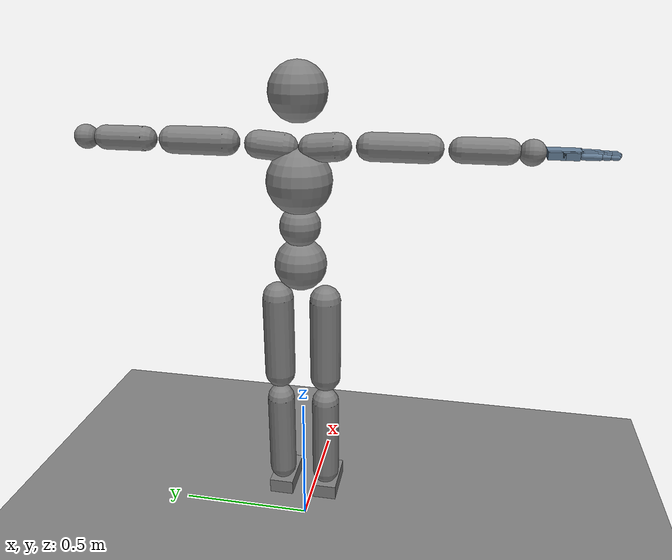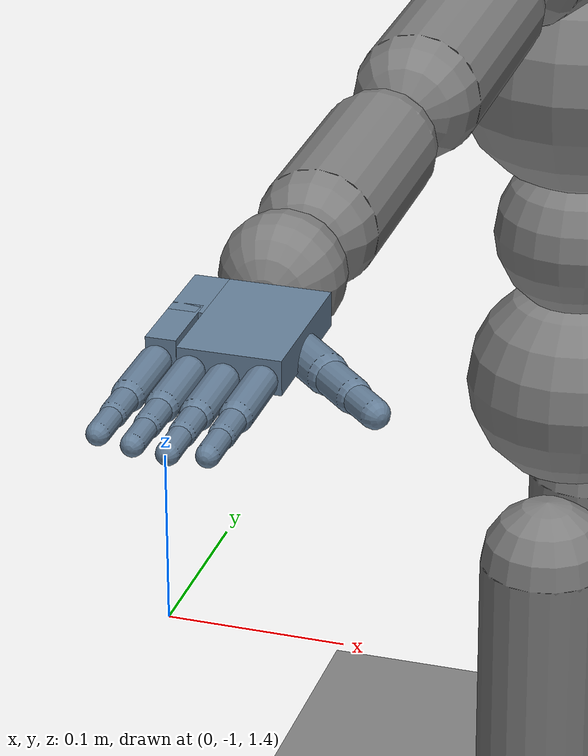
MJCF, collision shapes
<mujoco model="humanoid">

  <statistic extent="2" center="0 0 1"/>

  <option timestep="0.00555"/>

  <compiler angle="radian" meshdir="../stls/hand/" texturedir="../textures/" autolimits="true"/>

  <size njmax="500" nconmax="100" nstack="600000" nuser_jnt="1" nuser_site="1" nuser_tendon="1" nuser_actuator="16" nuser_sensor="1"/>

  <visual>
    <map force="0.1" fogend="5"/>
  </visual>

  <default>
    <motor ctrlrange="-1 1" ctrllimited="true"/>
    <default class="body">
      <geom type="capsule" condim="1" friction="1.0 0.05 0.05" solimp=".9 .99 .003" solref=".015 1"/>
      <joint type="hinge" damping="0.1" stiffness="5" armature=".007" limited="true" solimplimit="0 .99 .01"/>
      <site size=".04" group="3"/>
      <default class="force-torque">
        <site type="box" size=".01 .01 .02" rgba="1 0 0 1" />
      </default>
      <default class="touch">
        <site type="capsule" rgba="0 0 1 .3"/>
      </default>
    </default>

    <default class="hand">
      <default class="robot0:asset_class">
      <joint limited="true" margin="0.01" armature="0.001" damping="0.1" frictionloss="0.001"/>
      <geom friction="1 0.005 0.001" margin="0.0005"/>
      <site rgba="0.4 0.9 0.4 1"/>
      <general ctrllimited="true" forcelimited="true"/>
      </default>
      <default class="robot0:D_Touch">
      <site size="0.009 0.004 0.013" group="4" type="box" rgba="0.8 0.8 0.8 0.15"/>
      </default>
      <default class="robot0:DC_Hand">
      <geom conaffinity="0" group="4" material="robot0:MatColl"/>
      </default>
      <default class="robot0:D_Vizual">
      <geom type="mesh" contype="0" conaffinity="0" group="1" material="robot0:MatViz"/>
      </default>
      <default class="robot0:free">
      <joint limited="false" type="free"/>
      </default>
    </default>
  </default>

  <asset>
    <texture type="skybox" builtin="gradient" rgb1="0.44 0.85 0.56" rgb2="0.46 0.87 0.58" width="32" height="192"/>
    <texture type="2d" name="robot0:texplane" builtin="checker" rgb1="0.2 0.3 0.4" rgb2="0.1 0.15 0.2" width="512" height="512"/>
    <texture type="cube" name="robot0:texgeom" builtin="flat" mark="cross" rgb1="0.3 0.6 0.5" rgb2="0.3 0.6 0.5" width="127" height="762"/>
    <material name="robot0:MatGnd" texture="robot0:texplane" texuniform="true" reflectance="0.5"/>
    <material name="robot0:MatColl" specular="1" shininess="0.3" reflectance="0.5" rgba="0.4 0.5 0.6 1"/>
    <material name="robot0:MatViz" specular="0.75" shininess="0.1" reflectance="0.5" rgba="0.93 0.93 0.93 1"/>
    <material name="robot0:object" texture="robot0:texgeom"/>
    <material name="floor_mat" specular="0" rgba="0.2 0.2 0.2 0"/>
    <mesh name="robot0:palm" file="palm.stl" scale="0.001 0.001 0.001"/>
    <mesh name="robot0:knuckle" file="knuckle.stl" scale="0.001 0.001 0.001"/>
    <mesh name="robot0:F3" file="F3.stl" scale="0.001 0.001 0.001"/>
    <mesh name="robot0:F2" file="F2.stl" scale="0.001 0.001 0.001"/>
    <mesh name="robot0:F1" file="F1.stl" scale="0.001 0.001 0.001"/>
    <mesh name="robot0:lfmetacarpal" file="lfmetacarpal.stl" scale="0.001 0.001 0.001"/>
    <mesh name="robot0:TH3_z" file="TH3_z.stl" scale="0.001 0.001 0.001"/>
    <mesh name="robot0:TH2_z" file="TH2_z.stl" scale="0.001 0.001 0.001"/>
    <mesh name="robot0:TH1_z" file="TH1_z.stl" scale="0.001 0.001 0.001"/>
  </asset>

  <worldbody>
    <geom name="floor" type="plane" conaffinity="1" size="100 100 .2" />
    <body name="pelvis" pos="0 0 1" childclass="body">
      <freejoint name="root"/>
      <site name="root" class="force-torque"/>
      <geom name="pelvis" type="sphere" pos="0 0 0.07" size=".09" density="2226"/>
      <geom name="upper_waist" type="sphere" pos="0 0 0.205" size="0.07" density="2226"/>
      <site name="pelvis" class="touch" type="sphere" pos="0 0 0.07" size="0.091"/>
      <site name="upper_waist" class="touch" type="sphere" pos="0 0 0.205" size="0.071"/>

      <body name="torso" pos="0 0 0.236151">
        <light name="top" pos="0 0 2" mode="trackcom"/>
        <camera name="back" pos="-3 0 1" xyaxes="0 -1 0 1 0 2" mode="trackcom"/>
        <camera name="side" pos="0 -3 1" xyaxes="1 0 0 0 1 2" mode="trackcom"/>
        <joint name="abdomen_x" pos="0 0 0" axis="1 0 0" range="-60 60" stiffness="600" damping="60" armature=".025"/>
        <joint name="abdomen_y" pos="0 0 0" axis="0 1 0" range="-60 90" stiffness="600" damping="60" armature=".025"/>
        <joint name="abdomen_z" pos="0 0 0" axis="0 0 1" range="-50 50" stiffness="600" damping="60" armature=".025"/>
        <geom name="torso" type="sphere" pos="0 0 0.12" size="0.11" density="1794"/>
        <site name="torso" class="touch" type="sphere" pos="0 0 0.12" size="0.111"/>

        <geom name="right_clavicle" fromto="-0.0060125 -0.0457775 0.2287955 -0.016835 -0.128177 0.2376182" size=".045" density="1100"/>
        <geom name="left_clavicle" fromto="-0.0060125 0.0457775 0.2287955 -0.016835 0.128177 0.2376182" size=".045" density="1100"/>

        <body name="head" pos="0 0 0.223894">
          <joint name="neck_x" axis="1 0 0" range="-50 50" stiffness="50" damping="5" armature=".017"/>
          <joint name="neck_y" axis="0 1 0" range="-40 60" stiffness="50" damping="5" armature=".017"/>
          <joint name="neck_z" axis="0 0 1" range="-45 45" stiffness="50" damping="5" armature=".017"/>
          <geom name="head" type="sphere" pos="0 0 0.175" size="0.095" density="1081"/>
          <site name="head" class="touch" pos="0 0 0.175" type="sphere" size="0.103"/>
          <camera name="egocentric" pos=".103 0 0.175" xyaxes="0 -1 0 .1 0 1" fovy="80"/>
        </body>

        <body name="right_upper_arm" pos="-0.02405 -0.18311 0.24350" quat="0.7071 -0.7071 0.0 0.0">
          <joint name="right_shoulder_x" axis="1 0 0" range="-180 45" stiffness="200" damping="20" armature=".02"/>
          <joint name="right_shoulder_y" axis="0 1 0" range="-180 60" stiffness="200" damping="20" armature=".02"/>
          <joint name="right_shoulder_z" axis="0 0 1"  range="-90 90" stiffness="200" damping="20" armature=".02"/>
          <geom name="right_upper_arm" fromto="0 0 -0.05 0 0 -0.23" size=".045" density="982"/>
          <site name="right_upper_arm" class="touch" pos="0 0 -0.14" size="0.046 0.1" zaxis="0 0 1"/>

          <body name="right_lower_arm" pos="0 0 -0.274788">
            <joint name="right_elbow" axis="0 1 0" range="-160 0" stiffness="150" damping="15" armature=".015"/>
            <geom name="right_lower_arm" fromto="0 0 -0.0525 0 0 -0.1875" size="0.04" density="1056"/>
            <site name="right_lower_arm" class="touch" pos="0 0 -0.12" size="0.041 0.0685" zaxis="0 1 0"/>

            <body name="right_hand" pos="0 0 -0.258947">
              <geom name="right_hand" type="sphere" size=".04" density="1865"/>
              <site name="right_hand" class="touch" type="sphere" size=".041"/>

              <body name="robot0:hand mount" pos="0.0 0.0 -0.051" quat="0.0 1.0 0.0 0.0">
                <inertial pos="0.0 0.0 0" mass="0.1" diaginertia="0.001 0.001 0.001"/>
                <body name="robot0:palm" childclass="robot0:asset_class" pos="0 0 0">
                  <inertial pos="0.006 0 0.036" quat="0.715833 0.0439898 0.0749825 0.692839" mass="4" diaginertia="0.01 0.01 0.0075"/>
                  <geom name="robot0:V_palm" class="robot0:D_Vizual" mesh="robot0:palm"/>
                  <geom name="robot0:C_palm0" class="robot0:DC_Hand" size="0.032 0.0111 0.049" pos="0.011 0 0.038" type="box" rgba="0.4 0.5 0.6 0.1"/>
                  <geom name="robot0:C_palm1" class="robot0:DC_Hand" size="0.011 0.0111 0.025" pos="-0.032 0 0.014" type="box" rgba="0.4 0.5 0.6 0.1"/>
                  <body name="robot0:ffknuckle" pos="0.033 0 0.095">
                    <inertial pos="0 0 0" quat="0.520062 0.854102 0.00600072 -0.00300036" mass="0.008" diaginertia="1e-05 1e-05 1e-05"/>
                    <joint name="robot0:FFJ3" pos="0 0 0" axis="0 1 0" range="-0.349 0.349" user="1103"/>
                    <geom name="robot0:V_ffknuckle" class="robot0:D_Vizual" mesh="robot0:knuckle"/>
                    <body name="robot0:ffproximal" pos="0 0 0">
                      <inertial pos="0 0 0.023" quat="0.707095 -0.00400054 0.00400054 0.707095" mass="0.014" diaginertia="1e-05 1e-05 1e-05"/>
                      <joint name="robot0:FFJ2" pos="0 0 0" axis="1 0 0" range="0 1.571" user="1102"/>
                      <geom name="robot0:V_ffproximal" class="robot0:D_Vizual" mesh="robot0:F3"/>
                      <geom name="robot0:C_ffproximal" class="robot0:DC_Hand" size="0.01 0.0225" pos="0 0 0.0225" type="capsule"/>
                      <body name="robot0:ffmiddle" pos="0 0 0.045">
                        <inertial pos="0 0 0.011" quat="0.707107 0 0 0.707107" mass="0.012" diaginertia="1e-05 1e-05 1e-05"/>
                        <joint name="robot0:FFJ1" pos="0 0 0" axis="1 0 0" range="0 1.571" user="1101"/>
                        <geom name="robot0:V_ffmiddle" class="robot0:D_Vizual" mesh="robot0:F2"/>
                        <geom name="robot0:C_ffmiddle" class="robot0:DC_Hand" size="0.00805 0.0125" pos="0 0 0.0125" type="capsule"/>
                        <body name="robot0:ffdistal" pos="0 0 0.025">
                          <inertial pos="0 0 0.015" quat="0.7071 -0.00300043 0.00300043 0.7071" mass="0.01" diaginertia="1e-05 1e-05 1e-05"/>
                          <joint name="robot0:FFJ0" pos="0 0 0" axis="1 0 0" range="0 1.571" user="1100"/>
                          <geom name="robot0:V_ffdistal" class="robot0:D_Vizual" pos="0 0 0.001" mesh="robot0:F1"/>
                          <geom name="robot0:C_ffdistal" class="robot0:DC_Hand" size="0.00705 0.012" pos="0 0 0.012" type="capsule" condim="4"/>
                          <site name="robot0:S_fftip" pos="0 0 0.026" group="3"/>
                          <site name="robot0:Tch_fftip" class="robot0:D_Touch" pos="0 -0.004 0.018"/>
                        </body>
                      </body>
                    </body>
                  </body>
                  <body name="robot0:mfknuckle" pos="0.011 0 0.099">
                    <inertial pos="0 0 0" quat="0.520062 0.854102 0.00600072 -0.00300036" mass="0.008" diaginertia="1e-05 1e-05 1e-05"/>
                    <joint name="robot0:MFJ3" pos="0 0 0" axis="0 1 0" range="-0.349 0.349" user="1107"/>
                    <geom name="robot0:V_mfknuckle" class="robot0:D_Vizual" mesh="robot0:knuckle"/>
                    <body name="robot0:mfproximal" pos="0 0 0">
                      <inertial pos="0 0 0.023" quat="0.707095 -0.00400054 0.00400054 0.707095" mass="0.014" diaginertia="1e-05 1e-05 1e-05"/>
                      <joint name="robot0:MFJ2" pos="0 0 0" axis="1 0 0" range="0 1.571" user="1106"/>
                      <geom name="robot0:V_mfproximal" class="robot0:D_Vizual" mesh="robot0:F3"/>
                      <geom name="robot0:C_mfproximal" class="robot0:DC_Hand" size="0.01 0.0225" pos="0 0 0.0225" type="capsule"/>
                      <body name="robot0:mfmiddle" pos="0 0 0.045">
                        <inertial pos="0 0 0.012" quat="0.707107 0 0 0.707107" mass="0.012" diaginertia="1e-05 1e-05 1e-05"/>
                        <joint name="robot0:MFJ1" pos="0 0 0" axis="1 0 0" range="0 1.571" user="1105"/>
                        <geom name="robot0:V_mfmiddle" class="robot0:D_Vizual" mesh="robot0:F2"/>
                        <geom name="robot0:C_mfmiddle" class="robot0:DC_Hand" size="0.00805 0.0125" pos="0 0 0.0125" type="capsule"/>
                        <body name="robot0:mfdistal" pos="0 0 0.025">
                          <inertial pos="0 0 0.015" quat="0.7071 -0.00300043 0.00300043 0.7071" mass="0.01" diaginertia="1e-05 1e-05 1e-05"/>
                          <joint name="robot0:MFJ0" pos="0 0 0" axis="1 0 0" range="0 1.571" user="1104"/>
                          <geom name="robot0:V_mfdistal" class="robot0:D_Vizual" mesh="robot0:F1"/>
                          <geom name="robot0:C_mfdistal" class="robot0:DC_Hand" size="0.00705 0.012" pos="0 0 0.012" type="capsule" condim="4"/>
                          <site name="robot0:S_mftip" pos="0 0 0.026" group="3"/>
                          <site name="robot0:Tch_mftip" class="robot0:D_Touch" pos="0 -0.004 0.018"/>
                        </body>
                      </body>
                    </body>
                  </body>
                  <body name="robot0:rfknuckle" pos="-0.011 0 0.095">
                    <inertial pos="0 0 0" quat="0.520062 0.854102 0.00600072 -0.00300036" mass="0.008" diaginertia="1e-05 1e-05 1e-05"/>
                    <joint name="robot0:RFJ3" pos="0 0 0" axis="0 1 0" range="-0.349 0.349" user="1111"/>
                    <geom name="robot0:V_rfknuckle" class="robot0:D_Vizual" mesh="robot0:knuckle"/>
                    <body name="robot0:rfproximal" pos="0 0 0">
                      <inertial pos="0 0 0.023" quat="0.707095 -0.00400054 0.00400054 0.707095" mass="0.014" diaginertia="1e-05 1e-05 1e-05"/>
                      <joint name="robot0:RFJ2" pos="0 0 0" axis="1 0 0" range="0 1.571" user="1110"/>
                      <geom name="robot0:V_rfproximal" class="robot0:D_Vizual" mesh="robot0:F3"/>
                      <geom name="robot0:C_rfproximal" class="robot0:DC_Hand" size="0.01 0.0225" pos="0 0 0.0225" type="capsule"/>
                      <body name="robot0:rfmiddle" pos="0 0 0.045">
                        <inertial pos="0 0 0.012" quat="0.707107 0 0 0.707107" mass="0.012" diaginertia="1e-05 1e-05 1e-05"/>
                        <joint name="robot0:RFJ1" pos="0 0 0" axis="1 0 0" range="0 1.571" user="1109"/>
                        <geom name="robot0:V_rfmiddle" class="robot0:D_Vizual" mesh="robot0:F2"/>
                        <geom name="robot0:C_rfmiddle" class="robot0:DC_Hand" size="0.00805 0.0125" pos="0 0 0.0125" type="capsule"/>
                        <body name="robot0:rfdistal" pos="0 0 0.025">
                          <inertial pos="0 0 0.015" quat="0.7071 -0.00300043 0.00300043 0.7071" mass="0.01" diaginertia="1e-05 1e-05 1e-05"/>
                          <joint name="robot0:RFJ0" pos="0 0 0" axis="1 0 0" range="0 1.571" user="1108"/>
                          <geom name="robot0:V_rfdistal" class="robot0:D_Vizual" pos="0 0 0.001" mesh="robot0:F1"/>
                          <geom name="robot0:C_rfdistal" class="robot0:DC_Hand" size="0.00705 0.012" pos="0 0 0.012" type="capsule" condim="4"/>
                          <site name="robot0:S_rftip" pos="0 0 0.026" group="3"/>
                          <site name="robot0:Tch_rftip" class="robot0:D_Touch" pos="0 -0.004 0.018"/>
                        </body>
                      </body>
                    </body>
                  </body>
                  <body name="robot0:lfmetacarpal" pos="-0.017 0 0.044">
                    <inertial pos="-0.014 0.001 0.014" quat="0.709167 -0.0920216 -0.0630148 0.696164" mass="0.075" diaginertia="1e-05 1e-05 1e-05"/>
                    <joint name="robot0:LFJ4" pos="0 0 0" axis="0.570977 0 0.820966" range="0 0.785" user="1116"/>
                    <geom name="robot0:V_lfmetacarpal" class="robot0:D_Vizual" pos="-0.016 0 -0.023" mesh="robot0:lfmetacarpal"/>
                    <geom name="robot0:C_lfmetacarpal" class="robot0:DC_Hand" size="0.0095 0.0111 0.025" pos="-0.0165 0 0.01" type="box" rgba="0.4 0.5 0.6 0.2"/>
                    <body name="robot0:lfknuckle" pos="-0.017 0 0.044">
                      <inertial pos="0 0 0" quat="0.520062 0.854102 0.00600072 -0.00300036" mass="0.008" diaginertia="1e-05 1e-05 1e-05"/>
                      <joint name="robot0:LFJ3" pos="0 0 0" axis="0 1 0" range="-0.349 0.349" user="1115"/>
                      <geom name="robot0:V_lfknuckle" class="robot0:D_Vizual" mesh="robot0:knuckle"/>
                      <body name="robot0:lfproximal" pos="0 0 0">
                        <inertial pos="0 0 0.023" quat="0.707095 -0.00400054 0.00400054 0.707095" mass="0.014" diaginertia="1e-05 1e-05 1e-05"/>
                        <joint name="robot0:LFJ2" pos="0 0 0" axis="1 0 0" range="0 1.571" user="1114"/>
                        <geom name="robot0:V_lfproximal" class="robot0:D_Vizual" mesh="robot0:F3"/>
                        <geom name="robot0:C_lfproximal" class="robot0:DC_Hand" size="0.01 0.0225" pos="0 0 0.0225" type="capsule"/>
                        <body name="robot0:lfmiddle" pos="0 0 0.045">
                          <inertial pos="0 0 0.012" quat="0.707107 0 0 0.707107" mass="0.012" diaginertia="1e-05 1e-05 1e-05"/>
                          <joint name="robot0:LFJ1" pos="0 0 0" axis="1 0 0" range="0 1.571" user="1113"/>
                          <geom name="robot0:V_lfmiddle" class="robot0:D_Vizual" mesh="robot0:F2"/>
                          <geom name="robot0:C_lfmiddle" class="robot0:DC_Hand" size="0.00805 0.0125" pos="0 0 0.0125" type="capsule"/>
                          <body name="robot0:lfdistal" pos="0 0 0.025">
                            <inertial pos="0 0 0.015" quat="0.7071 -0.00300043 0.00300043 0.7071" mass="0.01" diaginertia="1e-05 1e-05 1e-05"/>
                            <joint name="robot0:LFJ0" pos="0 0 0" axis="1 0 0" range="0 1.571" user="1112"/>
                            <geom name="robot0:V_lfdistal" class="robot0:D_Vizual" pos="0 0 0.001" mesh="robot0:F1"/>
                            <geom name="robot0:C_lfdistal" class="robot0:DC_Hand" size="0.00705 0.012" pos="0 0 0.012" type="capsule" condim="4"/>
                            <site name="robot0:S_lftip" pos="0 0 0.026" group="3"/>
                            <site name="robot0:Tch_lftip" class="robot0:D_Touch" pos="0 -0.004 0.018"/>
                          </body>
                        </body>
                      </body>
                    </body>
                  </body>
                  <body name="robot0:thbase" pos="0.034 -0.009 0.029" quat="0.923956 0 0.382499 0">
                    <inertial pos="0 0 0" mass="0.01" diaginertia="1e-05 1e-05 1e-05"/>
                    <joint name="robot0:THJ4" pos="0 0 0" axis="0 0 -1" range="-1.047 1.047" user="1121"/>
                    <geom name="robot0:V_thbase" size="0.001 0.001 0.001" type="box" group="1"/>
                    <body name="robot0:thproximal" pos="0 0 0">
                      <inertial pos="0 0 0.017" quat="0.981604 0 0.000999597 0.190923" mass="0.016" diaginertia="1e-05 1e-05 1e-05"/>
                      <joint name="robot0:THJ3" pos="0 0 0" axis="1 0 0" range="0 1.222" user="1120"/>
                      <geom name="robot0:V_thproximal" class="robot0:D_Vizual" mesh="robot0:TH3_z"/>
                      <geom name="robot0:C_thproximal" class="robot0:DC_Hand" size="0.013 0.019" pos="0 0 0.019" type="capsule" rgba="0.4 0.5 0.6 0.1"/>
                      <body name="robot0:thhub" pos="0 0 0.038">
                        <inertial pos="0 0 0" mass="0.002" diaginertia="1e-05 1e-05 1e-05"/>
                        <joint name="robot0:THJ2" pos="0 0 0" axis="1 0 0" range="-0.209 0.209" user="1119"/>
                        <geom name="robot0:V_thhub" size="0.001 0.001 0.001" type="box" group="1"/>
                        <body name="robot0:thmiddle" pos="0 0 0">
                          <inertial pos="0 0 0.016" quat="0.999971 -0.000999971 -0.00699979 0.00299991" mass="0.016" diaginertia="1e-05 1e-05 1e-05"/>
                          <joint name="robot0:THJ1" pos="0 0 0" axis="0 1 0" range="-0.524 0.524" user="1118"/>
                          <geom name="robot0:V_thmiddle" class="robot0:D_Vizual" mesh="robot0:TH2_z"/>
                          <geom name="robot0:C_thmiddle" class="robot0:DC_Hand" size="0.011 0.016" pos="0 0 0.016" type="capsule"/>
                          <body name="robot0:thdistal" pos="0 0 0.032">
                            <inertial pos="0 0 0.016" quat="0.99887 -0.00499935 -0.0469939 0.00499935" mass="0.016" diaginertia="1e-05 1e-05 1e-05"/>
                            <joint name="robot0:THJ0" pos="0 0 0" axis="0 1 0" range="-1.571 0" user="1117"/>
                            <geom name="robot0:V_thdistal" class="robot0:D_Vizual" mesh="robot0:TH1_z"/>
                            <geom name="robot0:C_thdistal" class="robot0:DC_Hand" size="0.00918 0.013" pos="0 0 0.013" type="capsule" condim="4"/>
                            <site name="robot0:S_thtip" pos="0 0 0.0275" group="3"/>
                            <site name="robot0:Tch_thtip" class="robot0:D_Touch" pos="-0.005 0 0.02" size="0.005 0.011 0.016"/>
                          </body>
                        </body>
                      </body>
                    </body>
                  </body>
                </body>
              </body>

            </body>
          </body>
        </body>

        <body name="left_upper_arm" pos="-0.02405 0.18311 0.24350" quat="0.7071 0.7071 0.0 0.0">
          <joint name="left_shoulder_x" axis="1 0 0" range="-45 180" stiffness="200" damping="20" armature=".02"/>
          <joint name="left_shoulder_y" axis="0 1 0" range="-180 60" stiffness="200" damping="20" armature=".02"/>
          <joint name="left_shoulder_z" axis="0 0 1"  range="-90 90" stiffness="200" damping="20" armature=".02"/>
          <geom name="left_upper_arm" fromto="0 0 -0.05 0 0 -0.23" size="0.045" density="982"/>
          <site name="left_upper_arm" class="touch" pos="0 0 -0.14" size="0.046 0.1" zaxis="0 0 1"/>

          <body name="left_lower_arm" pos="0 0 -0.274788">
            <joint name="left_elbow" axis="0 1 0" range="-160 0" stiffness="150" damping="15" armature=".015"/>
            <geom name="left_lower_arm" fromto="0 0 -0.0525 0 0 -0.1875" size="0.04" density="1056"/>
            <site name="left_lower_arm" class="touch" pos="0 0 -0.1" size="0.041 0.0685" zaxis="0 0 1"/>

            <body name="left_hand" pos="0 0 -0.258947">
              <geom name="left_hand" type="sphere" size=".04" density="1865"/>
              <site name="left_hand" class="touch" type="sphere" size=".041"/>
            </body>
          </body>
        </body>
      </body>

      <body name="right_thigh" pos="0 -0.084887 0">
        <site name="right_hip" class="force-torque"/>
        <joint name="right_hip_x" axis="1 0 0" range="-60 15" stiffness="300" damping="30" armature=".02"/>
        <joint name="right_hip_y" axis="0 1 0" range="-140 60" stiffness="300" damping="30" armature=".02"/>
        <joint name="right_hip_z" axis="0 0 1" range="-60 35" stiffness="300" damping="30" armature=".02"/>
        <geom name="right_thigh" fromto="0 0 -0.06 0 0 -0.36" size="0.055" density="1269"/>
        <site name="right_thigh" class="touch" pos="0 0 -0.21" size="0.056 0.301" zaxis="0 0 -1"/>

        <body name="right_shin" pos="0 0 -0.421546">
          <site name="right_knee" class="force-torque" pos="0 0 0"/>
          <joint name="right_knee" pos="0 0 0" axis="0 1 0" range="0 160" stiffness="300" damping="30" armature=".02"/>
          <geom name="right_shin" fromto="0 0 -0.045 0 0 -0.355"  size=".05" density="1014"/>
          <site name="right_shin" class="touch" pos="0 0 -0.2" size="0.051 0.156" zaxis="0 0 -1"/>

          <body name="right_foot" pos="0 0 -0.409870">
            <site name="right_ankle" class="force-torque"/>
            <joint name="right_ankle_x" pos="0 0 0" axis="1 0 0" range="-30 30" stiffness="200" damping="20" armature=".01"/>
            <joint name="right_ankle_y" pos="0 0 0" axis="0 1 0" range="-55 55" stiffness="200" damping="20" armature=".01"/>
            <joint name="right_ankle_z" pos="0 0 0" axis="0 0 1" range="-40 40" stiffness="200" damping="20" armature=".01"/>
            <geom name="right_foot" type="box" pos="0.045 0 -0.0225" size="0.0885 0.045 0.0275" density="1141"/>
            <site name="right_foot" class="touch" type="box" pos="0.045 0 -0.0225" size="0.0895 0.055 0.0285"/>
          </body>
        </body>
      </body>

      <body name="left_thigh" pos="0 0.084887 0">
        <site name="left_hip" class="force-torque"/>
        <joint name="left_hip_x" axis="1 0 0" range="-15 60" stiffness="300" damping="30" armature=".02"/>
        <joint name="left_hip_y" axis="0 1 0" range="-140 60" stiffness="300" damping="30" armature=".02"/>
        <joint name="left_hip_z" axis="0 0 1" range="-35 60" stiffness="300" damping="30" armature=".02"/>
        <geom name="left_thigh" fromto="0 0 -0.06 0 0 -0.36" size=".055" density="1269"/>
        <site name="left_thigh" class="touch" pos="0 0 -0.21" size="0.056 0.301" zaxis="0 0 -1"/>

        <body name="left_shin" pos="0 0 -0.421546">
          <site name="left_knee" class="force-torque" pos="0 0 .02"/>
          <joint name="left_knee" pos="0 0 0" axis="0 1 0" range="0 160" stiffness="300" damping="30" armature=".02"/>
          <geom name="left_shin" fromto="0 0 -0.045 0 0 -0.355"  size=".05" density="1014"/>
          <site name="left_shin" class="touch" pos="0 0 -0.2" size="0.051 0.156" zaxis="0 0 -1"/>

          <body name="left_foot" pos="0 0 -0.409870">
            <site name="left_ankle" class="force-torque"/>
            <joint name="left_ankle_x" pos="0 0 0" axis="1 0 0" range="-30 30" stiffness="200" damping="20" armature=".01"/>
            <joint name="left_ankle_y" pos="0 0 0" axis="0 1 0" range="-55 55" stiffness="200" damping="20" armature=".01"/>
            <joint name="left_ankle_z" pos="0 0 0" axis="0 0 1" range="-40 40" stiffness="200" damping="20" armature=".01"/>
            <geom name="left_foot" type="box" pos="0.045 0 -0.0225" size="0.0885 0.045 0.0275" density="1141"/>
            <site name="left_foot" class="touch" type="box" pos="0.045 0 -0.0225" size="0.0895 0.055 0.0285"/>
          </body>
        </body>
      </body>
    </body>
  </worldbody>

  <contact>
    <pair geom1="robot0:C_palm0" geom2="robot0:C_thdistal" condim="1"/>
    <pair geom1="robot0:C_ffproximal" geom2="robot0:C_mfproximal" condim="1"/>
    <pair geom1="robot0:C_ffproximal" geom2="robot0:C_thdistal" condim="1"/>
    <pair geom1="robot0:C_ffmiddle" geom2="robot0:C_thdistal" condim="1"/>
    <pair geom1="robot0:C_ffdistal" geom2="robot0:C_mfdistal" condim="1"/>
    <pair geom1="robot0:C_ffdistal" geom2="robot0:C_thdistal" condim="1"/>
    <pair geom1="robot0:C_mfproximal" geom2="robot0:C_rfproximal" condim="1"/>
    <pair geom1="robot0:C_mfproximal" geom2="robot0:C_thdistal" condim="1"/>
    <pair geom1="robot0:C_mfdistal" geom2="robot0:C_rfdistal" condim="1"/>
    <pair geom1="robot0:C_mfdistal" geom2="robot0:C_lfdistal" condim="1"/>
    <pair geom1="robot0:C_mfdistal" geom2="robot0:C_thdistal" condim="1"/>
    <pair geom1="robot0:C_rfproximal" geom2="robot0:C_lfproximal" condim="1"/>
    <pair geom1="robot0:C_rfmiddle" geom2="robot0:C_lfmiddle" condim="1"/>
    <pair geom1="robot0:C_rfmiddle" geom2="robot0:C_lfdistal" condim="1"/>
    <pair geom1="robot0:C_rfdistal" geom2="robot0:C_lfmiddle" condim="1"/>
    <pair geom1="robot0:C_rfdistal" geom2="robot0:C_lfdistal" condim="1"/>
    <pair geom1="robot0:C_rfdistal" geom2="robot0:C_lfdistal" condim="1"/>
    <pair geom1="robot0:C_rfdistal" geom2="robot0:C_thdistal" condim="1"/>
    <pair geom1="robot0:C_lfdistal" geom2="robot0:C_thdistal" condim="1"/>
  </contact>
  <tendon>
    <fixed name="robot0:T_FFJ1c" range="-0.001 0.001">
      <joint joint="robot0:FFJ0" coef="0.00705"/>
      <joint joint="robot0:FFJ1" coef="-0.00805"/>
    </fixed>
    <fixed name="robot0:T_MFJ1c" range="-0.001 0.001">
      <joint joint="robot0:MFJ0" coef="0.00705"/>
      <joint joint="robot0:MFJ1" coef="-0.00805"/>
    </fixed>
    <fixed name="robot0:T_RFJ1c" range="-0.001 0.001">
      <joint joint="robot0:RFJ0" coef="0.00705"/>
      <joint joint="robot0:RFJ1" coef="-0.00805"/>
    </fixed>
    <fixed name="robot0:T_LFJ1c" range="-0.001 0.001">
      <joint joint="robot0:LFJ0" coef="0.00705"/>
      <joint joint="robot0:LFJ1" coef="-0.00805"/>
    </fixed>
  </tendon>

  <actuator>
    <motor name='abdomen_x'       gear='125' joint='abdomen_x'/>
    <motor name='abdomen_y'       gear='125' joint='abdomen_y'/>
    <motor name='abdomen_z'       gear='125' joint='abdomen_z'/>
    <motor name='neck_x'          gear='20' joint='neck_x'/>
    <motor name='neck_y'          gear='20' joint='neck_y'/>
    <motor name='neck_z'          gear='20' joint='neck_z'/>
    <motor name='right_shoulder_x' gear='70' joint='right_shoulder_x'/>
    <motor name='right_shoulder_y' gear='70' joint='right_shoulder_y'/>
    <motor name='right_shoulder_z' gear='70' joint='right_shoulder_z'/>
    <motor name='right_elbow'     gear='60' joint='right_elbow'/>
    <motor name='left_shoulder_x'  gear='70' joint='left_shoulder_x'/>
    <motor name='left_shoulder_y'  gear='70' joint='left_shoulder_y'/>
    <motor name='left_shoulder_z'  gear='70' joint='left_shoulder_z'/>
    <motor name='left_elbow'      gear='60' joint='left_elbow'/>
    <motor name='right_hip_x'     gear='125' joint='right_hip_x'/>
    <motor name='right_hip_z'     gear='125' joint='right_hip_z'/>
    <motor name='right_hip_y'     gear='125' joint='right_hip_y'/>
    <motor name='right_knee'      gear='100' joint='right_knee'/>
    <motor name='right_ankle_x'   gear='50' joint='right_ankle_x'/>
    <motor name='right_ankle_y'   gear='50' joint='right_ankle_y'/>
    <motor name='right_ankle_z'   gear='50' joint='right_ankle_z'/>
    <motor name='left_hip_x'      gear='125' joint='left_hip_x'/>
    <motor name='left_hip_z'      gear='125' joint='left_hip_z'/>
    <motor name='left_hip_y'      gear='125' joint='left_hip_y'/>
    <motor name='left_knee'       gear='100' joint='left_knee'/>
    <motor name='left_ankle_x'    gear='50' joint='left_ankle_x'/>
    <motor name='left_ankle_y'    gear='50' joint='left_ankle_y'/>
    <motor name='left_ankle_z'    gear='50' joint='left_ankle_z'/>

    <general name="robot0:A_FFJ3" class="robot0:asset_class" joint="robot0:FFJ3" ctrlrange="-0.349 0.349" forcerange="-0.9 0.9" biastype="affine" biasprm="0 -1 0 0 0 0 0 0 0 0" user="2004 0 0 0 0 0 0 0 0 0 0 0 0 0 0 0"/>
    <general name="robot0:A_FFJ2" class="robot0:asset_class" joint="robot0:FFJ2" ctrlrange="0 1.571" forcerange="-0.9 0.9" biastype="affine" biasprm="0 -1 0 0 0 0 0 0 0 0" user="2002 0 0 0 0 0 0 0 0 0 0 0 0 0 0 0"/>
    <general name="robot0:A_FFJ1" class="robot0:asset_class" joint="robot0:FFJ1" ctrlrange="0 1.571" forcerange="-0.7245 0.7245" biastype="affine" biasprm="0 -1 0 0 0 0 0 0 0 0" user="2000 0 0 0 0 0 0 0 0 0 0 0 0 0 0 0"/>
    <general name="robot0:A_MFJ3" class="robot0:asset_class" joint="robot0:MFJ3" ctrlrange="-0.349 0.349" forcerange="-0.9 0.9" biastype="affine" biasprm="0 -1 0 0 0 0 0 0 0 0" user="2010 0 0 0 0 0 0 0 0 0 0 0 0 0 0 0"/>
    <general name="robot0:A_MFJ2" class="robot0:asset_class" joint="robot0:MFJ2" ctrlrange="0 1.571" forcerange="-0.9 0.9" biastype="affine" biasprm="0 -1 0 0 0 0 0 0 0 0" user="2008 0 0 0 0 0 0 0 0 0 0 0 0 0 0 0"/>
    <general name="robot0:A_MFJ1" class="robot0:asset_class" joint="robot0:MFJ1" ctrlrange="0 1.571" forcerange="-0.7245 0.7245" biastype="affine" biasprm="0 -1 0 0 0 0 0 0 0 0" user="2006 0 0 0 0 0 0 0 0 0 0 0 0 0 0 0"/>
    <general name="robot0:A_RFJ3" class="robot0:asset_class" joint="robot0:RFJ3" ctrlrange="-0.349 0.349" forcerange="-0.9 0.9" biastype="affine" biasprm="0 -1 0 0 0 0 0 0 0 0" user="2016 0 0 0 0 0 0 0 0 0 0 0 0 0 0 0"/>
    <general name="robot0:A_RFJ2" class="robot0:asset_class" joint="robot0:RFJ2" ctrlrange="0 1.571" forcerange="-0.9 0.9" biastype="affine" biasprm="0 -1 0 0 0 0 0 0 0 0" user="2014 0 0 0 0 0 0 0 0 0 0 0 0 0 0 0"/>
    <general name="robot0:A_RFJ1" class="robot0:asset_class" joint="robot0:RFJ1" ctrlrange="0 1.571" forcerange="-0.7245 0.7245" biastype="affine" biasprm="0 -1 0 0 0 0 0 0 0 0" user="2012 0 0 0 0 0 0 0 0 0 0 0 0 0 0 0"/>
    <general name="robot0:A_LFJ4" class="robot0:asset_class" joint="robot0:LFJ4" ctrlrange="0 0.785" forcerange="-0.9 0.9" biastype="affine" biasprm="0 -1 0 0 0 0 0 0 0 0" user="2024 0 0 0 0 0 0 0 0 0 0 0 0 0 0 0"/>
    <general name="robot0:A_LFJ3" class="robot0:asset_class" joint="robot0:LFJ3" ctrlrange="-0.349 0.349" forcerange="-0.9 0.9" biastype="affine" biasprm="0 -1 0 0 0 0 0 0 0 0" user="2022 0 0 0 0 0 0 0 0 0 0 0 0 0 0 0"/>
    <general name="robot0:A_LFJ2" class="robot0:asset_class" joint="robot0:LFJ2" ctrlrange="0 1.571" forcerange="-0.9 0.9" biastype="affine" biasprm="0 -1 0 0 0 0 0 0 0 0" user="2020 0 0 0 0 0 0 0 0 0 0 0 0 0 0 0"/>
    <general name="robot0:A_LFJ1" class="robot0:asset_class" joint="robot0:LFJ1" ctrlrange="0 1.571" forcerange="-0.7245 0.7245" biastype="affine" biasprm="0 -1 0 0 0 0 0 0 0 0" user="2018 0 0 0 0 0 0 0 0 0 0 0 0 0 0 0"/>
    <general name="robot0:A_THJ4" class="robot0:asset_class" joint="robot0:THJ4" ctrlrange="-1.047 1.047" forcerange="-2.3722 2.3722" biastype="affine" biasprm="0 -1 0 0 0 0 0 0 0 0" user="2034 0 0 0 0 0 0 0 0 0 0 0 0 0 0 0"/>
    <general name="robot0:A_THJ3" class="robot0:asset_class" joint="robot0:THJ3" ctrlrange="0 1.222" forcerange="-1.45 1.45" biastype="affine" biasprm="0 -1 0 0 0 0 0 0 0 0" user="2032 0 0 0 0 0 0 0 0 0 0 0 0 0 0 0"/>
    <general name="robot0:A_THJ2" class="robot0:asset_class" joint="robot0:THJ2" ctrlrange="-0.209 0.209" forcerange="-0.99 0.99" biastype="affine" biasprm="0 -1 0 0 0 0 0 0 0 0" user="2030 0 0 0 0 0 0 0 0 0 0 0 0 0 0 0"/>
    <general name="robot0:A_THJ1" class="robot0:asset_class" joint="robot0:THJ1" ctrlrange="-0.524 0.524" forcerange="-0.99 0.99" biastype="affine" biasprm="0 -1 0 0 0 0 0 0 0 0" user="2028 0 0 0 0 0 0 0 0 0 0 0 0 0 0 0"/>
    <general name="robot0:A_THJ0" class="robot0:asset_class" joint="robot0:THJ0" ctrlrange="-1.571 0" forcerange="-0.81 0.81" biastype="affine" biasprm="0 -1 0 0 0 0 0 0 0 0" user="2026 0 0 0 0 0 0 0 0 0 0 0 0 0 0 0"/>
  </actuator>

  <sensor>
    <subtreelinvel name="pelvis_subtreelinvel" body="pelvis"/>
    <accelerometer name="root_accel"    site="root"/>
    <velocimeter name="root_vel"        site="root"/>
    <gyro name="root_gyro"              site="root"/>

    <force name="left_ankle_force"       site="left_ankle"/>
    <force name="right_ankle_force"      site="right_ankle"/>
    <force name="left_knee_force"        site="left_knee"/>
    <force name="right_knee_force"       site="right_knee"/>
    <force name="left_hip_force"         site="left_hip"/>
    <force name="right_hip_force"        site="right_hip"/>

    <torque name="left_ankle_torque"     site="left_ankle"/>
    <torque name="right_ankle_torque"    site="right_ankle"/>
    <torque name="left_knee_torque"      site="left_knee"/>
    <torque name="right_knee_torque"     site="right_knee"/>
    <torque name="left_hip_torque"       site="left_hip"/>
    <torque name="right_hip_torque"      site="right_hip"/>

    <touch name="pelvis_touch"           site="pelvis"/>
    <touch name="upper_waist_touch"      site="upper_waist"/>
    <touch name="torso_touch"            site="torso"/>
    <touch name="head_touch"             site="head"/>
    <touch name="right_upper_arm_touch"  site="right_upper_arm"/>
    <touch name="right_lower_arm_touch"  site="right_lower_arm"/>
    <touch name="right_hand_touch"       site="right_hand"/>
    <touch name="left_upper_arm_touch"   site="left_upper_arm"/>
    <touch name="left_lower_arm_touch"   site="left_lower_arm"/>
    <touch name="left_hand_touch"        site="left_hand"/>
    <touch name="right_thigh_touch"      site="right_thigh"/>
    <touch name="right_shin_touch"       site="right_shin"/>
    <touch name="right_foot_touch"       site="right_foot"/>
    <touch name="left_thigh_touch"       site="left_thigh"/>
    <touch name="left_shin_touch"        site="left_shin"/>
    <touch name="left_foot_touch"        site="left_foot"/>

    <jointpos joint="robot0:FFJ3" name="robot0:Sjp_FFJ3"/>
    <jointpos joint="robot0:FFJ2" name="robot0:Sjp_FFJ2"/>
    <jointpos joint="robot0:FFJ1" name="robot0:Sjp_FFJ1"/>
    <jointpos joint="robot0:FFJ0" name="robot0:Sjp_FFJ0"/>
    <jointpos joint="robot0:MFJ3" name="robot0:Sjp_MFJ3"/>
    <jointpos joint="robot0:MFJ2" name="robot0:Sjp_MFJ2"/>
    <jointpos joint="robot0:MFJ1" name="robot0:Sjp_MFJ1"/>
    <jointpos joint="robot0:MFJ0" name="robot0:Sjp_MFJ0"/>
    <jointpos joint="robot0:RFJ3" name="robot0:Sjp_RFJ3"/>
    <jointpos joint="robot0:RFJ2" name="robot0:Sjp_RFJ2"/>
    <jointpos joint="robot0:RFJ1" name="robot0:Sjp_RFJ1"/>
    <jointpos joint="robot0:RFJ0" name="robot0:Sjp_RFJ0"/>
    <jointpos joint="robot0:LFJ4" name="robot0:Sjp_LFJ4"/>
    <jointpos joint="robot0:LFJ3" name="robot0:Sjp_LFJ3"/>
    <jointpos joint="robot0:LFJ2" name="robot0:Sjp_LFJ2"/>
    <jointpos joint="robot0:LFJ1" name="robot0:Sjp_LFJ1"/>
    <jointpos joint="robot0:LFJ0" name="robot0:Sjp_LFJ0"/>
    <jointpos joint="robot0:THJ4" name="robot0:Sjp_THJ4"/>
    <jointpos joint="robot0:THJ3" name="robot0:Sjp_THJ3"/>
    <jointpos joint="robot0:THJ2" name="robot0:Sjp_THJ2"/>
    <jointpos joint="robot0:THJ1" name="robot0:Sjp_THJ1"/>
    <jointpos joint="robot0:THJ0" name="robot0:Sjp_THJ0"/>
    <touch site="robot0:Tch_fftip" name="robot0:ST_Tch_fftip"/>
    <touch site="robot0:Tch_mftip" name="robot0:ST_Tch_mftip"/>
    <touch site="robot0:Tch_rftip" name="robot0:ST_Tch_rftip"/>
    <touch site="robot0:Tch_lftip" name="robot0:ST_Tch_lftip"/>
    <touch site="robot0:Tch_thtip" name="robot0:ST_Tch_thtip"/>
  </sensor>

</mujoco>
